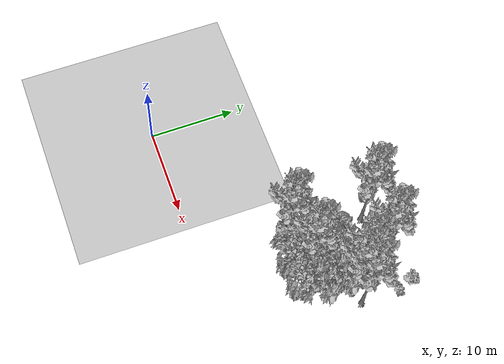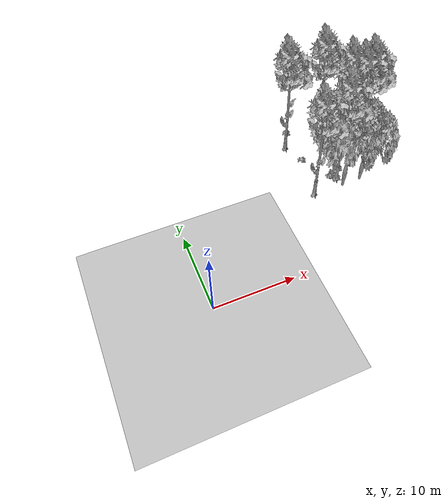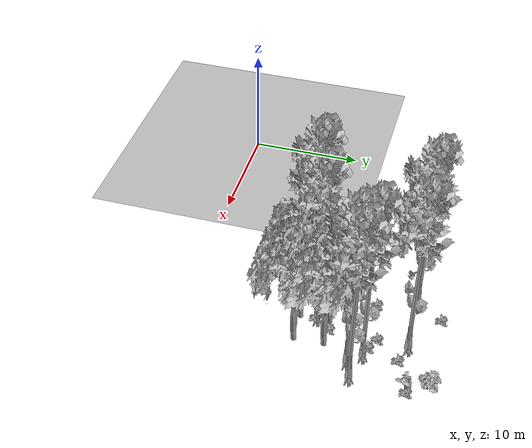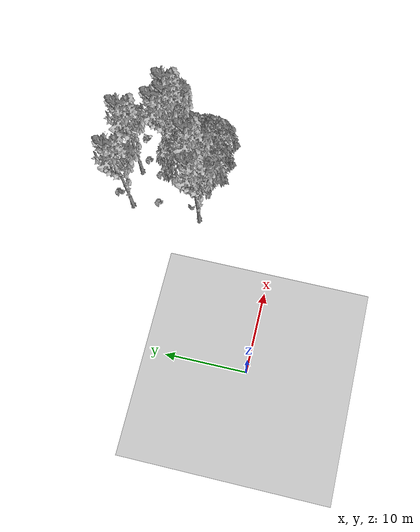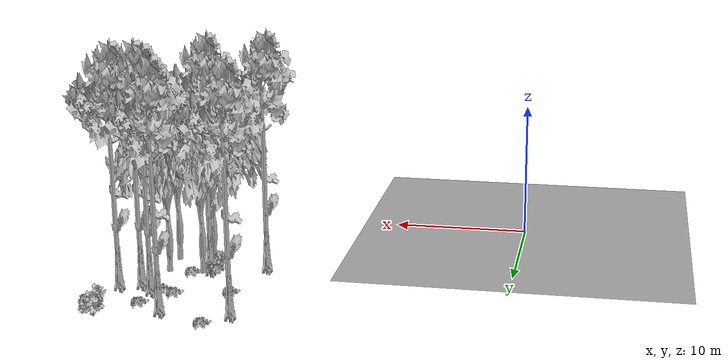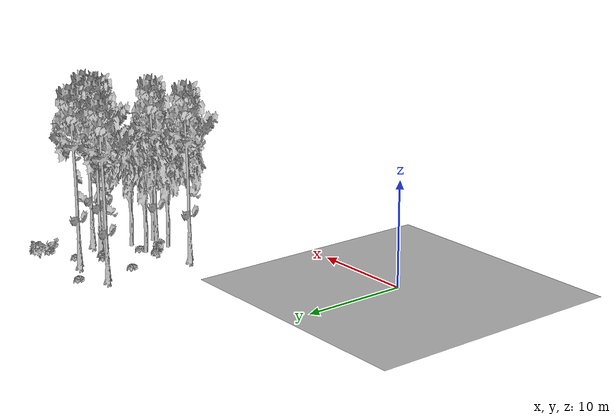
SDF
<sdf version="1.7">
 <world name="default">
  <model name="ground_plane">
   <static>1</static>
   <link name="link">
    <collision name="collision">
     <pose>-50 0 0 0 -0 0</pose>
     <geometry><plane><normal>0 0 1</normal><size>80 80</size></plane></geometry>
     <surface><contact><ode><min_depth>0.01</min_depth><max_vel>0</max_vel></ode></contact></surface>
    </collision>
    <visual name="grass">
     <cast_shadows>0</cast_shadows>
     <geometry>
      <mesh>
       <scale>0.46714285714285714 0.46714285714285714 0.1</scale>
       <uri>file://grass_plane/meshes/grass_plane.dae</uri>
      </mesh>
     </geometry>
    </visual>
   </link>
  </model>
  <model name="Tree 29">
   <static>1</static>
   <pose>27.171444746158684 15.330684765212474 0 1.57079 -0 0</pose>
   <link name="link">
    <collision name="collision">
     <geometry><mesh><scale>3.5 5 3.5</scale><uri>model://tree_9/meshes/tree_9.obj</uri></mesh></geometry>
    </collision>
    <visual name="visual">
     <geometry><mesh><scale>3.5 5 3.5</scale><uri>model://tree_9/meshes/tree_9.obj</uri></mesh></geometry>
    </visual>
   </link>
  </model>
  <model name="Tree 36">
   <static>1</static>
   <pose>24.28689004952345 12.646158830248162 0 1.57079 -0 0</pose>
   <link name="link">
    <collision name="collision">
     <geometry><mesh><scale>3.5 5 3.5</scale><uri>model://tree_2/meshes/tree_2.obj</uri></mesh></geometry>
    </collision>
    <visual name="visual">
     <geometry><mesh><scale>3.5 5 3.5</scale><uri>model://tree_2/meshes/tree_2.obj</uri></mesh></geometry>
    </visual>
   </link>
  </model>
  <model name="Tree 46">
   <static>1</static>
   <pose>17.864913618820772 10.258403864699886 0 1.57079 -0 0</pose>
   <link name="link">
    <collision name="collision">
     <geometry><mesh><scale>3.5 5 3.5</scale><uri>model://tree_9/meshes/tree_9.obj</uri></mesh></geometry>
    </collision>
    <visual name="visual">
     <geometry><mesh><scale>3.5 5 3.5</scale><uri>model://tree_9/meshes/tree_9.obj</uri></mesh></geometry>
    </visual>
   </link>
  </model>
  <model name="Tree 162">
   <static>1</static>
   <pose>25.697493069845237 14.834790841737544 0 1.57079 -0 0</pose>
   <link name="link">
    <collision name="collision">
     <geometry><mesh><scale>3.5 5 3.5</scale><uri>model://tree_9/meshes/tree_9.obj</uri></mesh></geometry>
    </collision>
    <visual name="visual">
     <geometry><mesh><scale>3.5 5 3.5</scale><uri>model://tree_9/meshes/tree_9.obj</uri></mesh></geometry>
    </visual>
   </link>
  </model>
  <model name="Tree 182">
   <static>1</static>
   <pose>24.644981242973927 15.904093824051117 0 1.57079 -0 0</pose>
   <link name="link">
    <collision name="collision">
     <geometry><mesh><scale>3.5 5 3.5</scale><uri>model://tree_9/meshes/tree_9.obj</uri></mesh></geometry>
    </collision>
    <visual name="visual">
     <geometry><mesh><scale>3.5 5 3.5</scale><uri>model://tree_9/meshes/tree_9.obj</uri></mesh></geometry>
    </visual>
   </link>
  </model>
  <model name="Tree 237">
   <static>1</static>
   <pose>21.72934920933539 11.489764212916072 0 1.57079 -0 0</pose>
   <link name="link">
    <collision name="collision">
     <geometry><mesh><scale>3.5 5 3.5</scale><uri>model://tree_9/meshes/tree_9.obj</uri></mesh></geometry>
    </collision>
    <visual name="visual">
     <geometry><mesh><scale>3.5 5 3.5</scale><uri>model://tree_9/meshes/tree_9.obj</uri></mesh></geometry>
    </visual>
   </link>
  </model>
  <model name="Tree 302">
   <static>1</static>
   <pose>24.3843712499381 10.162685085538797 0 1.57079 -0 0</pose>
   <link name="link">
    <collision name="collision">
     <geometry><mesh><scale>3.5 5 3.5</scale><uri>model://tree_2/meshes/tree_2.obj</uri></mesh></geometry>
    </collision>
    <visual name="visual">
     <geometry><mesh><scale>3.5 5 3.5</scale><uri>model://tree_2/meshes/tree_2.obj</uri></mesh></geometry>
    </visual>
   </link>
  </model>
  <model name="Tree 420">
   <static>1</static>
   <pose>22.834709359470345 19.238083608738997 0 1.57079 -0 0</pose>
   <link name="link">
    <collision name="collision">
     <geometry><mesh><scale>3.5 5 3.5</scale><uri>model://tree_9/meshes/tree_9.obj</uri></mesh></geometry>
    </collision>
    <visual name="visual">
     <geometry><mesh><scale>3.5 5 3.5</scale><uri>model://tree_9/meshes/tree_9.obj</uri></mesh></geometry>
    </visual>
   </link>
  </model>
  <model name="Tree 437">
   <static>1</static>
   <pose>17.939337957647325 19.130532645692433 0 1.57079 -0 0</pose>
   <link name="link">
    <collision name="collision">
     <geometry><mesh><scale>3.5 5 3.5</scale><uri>model://tree_9/meshes/tree_9.obj</uri></mesh></geometry>
    </collision>
    <visual name="visual">
     <geometry><mesh><scale>3.5 5 3.5</scale><uri>model://tree_9/meshes/tree_9.obj</uri></mesh></geometry>
    </visual>
   </link>
  </model>
  <model name="Tree 526">
   <static>1</static>
   <pose>21.818419233469093 10.075484699295451 0 1.57079 -0 0</pose>
   <link name="link">
    <collision name="collision">
     <geometry><mesh><scale>3.5 5 3.5</scale><uri>model://tree_2/meshes/tree_2.obj</uri></mesh></geometry>
    </collision>
    <visual name="visual">
     <geometry><mesh><scale>3.5 5 3.5</scale><uri>model://tree_2/meshes/tree_2.obj</uri></mesh></geometry>
    </visual>
   </link>
  </model>
  <model name="Tree 555">
   <static>1</static>
   <pose>21.84223056887756 12.558378515826988 0 1.57079 -0 0</pose>
   <link name="link">
    <collision name="collision">
     <geometry><mesh><scale>3.5 5 3.5</scale><uri>model://tree_2/meshes/tree_2.obj</uri></mesh></geometry>
    </collision>
    <visual name="visual">
     <geometry><mesh><scale>3.5 5 3.5</scale><uri>model://tree_2/meshes/tree_2.obj</uri></mesh></geometry>
    </visual>
   </link>
  </model>
  <model name="Bush 61">
   <static>1</static>
   <pose>22.67023732574411 16.686506792746997 0 1.57079 -0 0</pose>
   <link name="link">
    <collision name="collision">
     <geometry><mesh><scale>2 2 2</scale><uri>model://bush_2/meshes/bush_2.obj</uri></mesh></geometry>
     <surface><contact><collide_without_contact>false</collide_without_contact></contact></surface>
    </collision>
    <visual name="visual">
     <geometry><mesh><scale>2 2 2</scale><uri>model://bush_2/meshes/bush_2.obj</uri></mesh></geometry>
    </visual>
   </link>
  </model>
  <model name="Bush 66">
   <static>1</static>
   <pose>22.677660062489643 12.692200495342817 0 1.57079 -0 0</pose>
   <link name="link">
    <collision name="collision">
     <geometry><mesh><scale>2 2 2</scale><uri>model://bush_2/meshes/bush_2.obj</uri></mesh></geometry>
     <surface><contact><collide_without_contact>false</collide_without_contact></contact></surface>
    </collision>
    <visual name="visual">
     <geometry><mesh><scale>2 2 2</scale><uri>model://bush_2/meshes/bush_2.obj</uri></mesh></geometry>
    </visual>
   </link>
  </model>
  <model name="Bush 122">
   <static>1</static>
   <pose>19.158205701040465 21.361691416100605 0 1.57079 -0 0</pose>
   <link name="link">
    <collision name="collision">
     <geometry><mesh><scale>2 2 2</scale><uri>model://bush_2/meshes/bush_2.obj</uri></mesh></geometry>
     <surface><contact><collide_without_contact>false</collide_without_contact></contact></surface>
    </collision>
    <visual name="visual">
     <geometry><mesh><scale>2 2 2</scale><uri>model://bush_2/meshes/bush_2.obj</uri></mesh></geometry>
    </visual>
   </link>
  </model>
  <model name="Bush 132">
   <static>1</static>
   <pose>23.743716093269654 16.154837645892243 0 1.57079 -0 0</pose>
   <link name="link">
    <collision name="collision">
     <geometry><mesh><scale>2 2 2</scale><uri>model://bush_2/meshes/bush_2.obj</uri></mesh></geometry>
     <surface><contact><collide_without_contact>false</collide_without_contact></contact></surface>
    </collision>
    <visual name="visual">
     <geometry><mesh><scale>2 2 2</scale><uri>model://bush_2/meshes/bush_2.obj</uri></mesh></geometry>
    </visual>
   </link>
  </model>
  <model name="Bush 134">
   <static>1</static>
   <pose>27.117163595064056 19.742857094824366 0 1.57079 -0 0</pose>
   <link name="link">
    <collision name="collision">
     <geometry><mesh><scale>2 2 2</scale><uri>model://bush_0/meshes/bush_0.obj</uri></mesh></geometry>
     <surface><contact><collide_without_contact>false</collide_without_contact></contact></surface>
    </collision>
    <visual name="visual">
     <geometry><mesh><scale>2 2 2</scale><uri>model://bush_0/meshes/bush_0.obj</uri></mesh></geometry>
    </visual>
   </link>
  </model>
  <model name="Bush 215">
   <static>1</static>
   <pose>18.870967470979316 15.929353432607307 0 1.57079 -0 0</pose>
   <link name="link">
    <collision name="collision">
     <geometry><mesh><scale>2 2 2</scale><uri>model://bush_2/meshes/bush_2.obj</uri></mesh></geometry>
     <surface><contact><collide_without_contact>false</collide_without_contact></contact></surface>
    </collision>
    <visual name="visual">
     <geometry><mesh><scale>2 2 2</scale><uri>model://bush_2/meshes/bush_2.obj</uri></mesh></geometry>
    </visual>
   </link>
  </model>
  <model name="Bush 304">
   <static>1</static>
   <pose>21.108213219758362 11.885811404178895 0 1.57079 -0 0</pose>
   <link name="link">
    <collision name="collision">
     <geometry><mesh><scale>2 2 2</scale><uri>model://bush_2/meshes/bush_2.obj</uri></mesh></geometry>
     <surface><contact><collide_without_contact>false</collide_without_contact></contact></surface>
    </collision>
    <visual name="visual">
     <geometry><mesh><scale>2 2 2</scale><uri>model://bush_2/meshes/bush_2.obj</uri></mesh></geometry>
    </visual>
   </link>
  </model>
  <model name="Bush 323">
   <static>1</static>
   <pose>27.39821336006389 19.846740313922318 0 1.57079 -0 0</pose>
   <link name="link">
    <collision name="collision">
     <geometry><mesh><scale>2 2 2</scale><uri>model://bush_2/meshes/bush_2.obj</uri></mesh></geometry>
     <surface><contact><collide_without_contact>false</collide_without_contact></contact></surface>
    </collision>
    <visual name="visual">
     <geometry><mesh><scale>2 2 2</scale><uri>model://bush_2/meshes/bush_2.obj</uri></mesh></geometry>
    </visual>
   </link>
  </model>
  <model name="Bush 339">
   <static>1</static>
   <pose>24.415370072353753 18.705969039737376 0 1.57079 -0 0</pose>
   <link name="link">
    <collision name="collision">
     <geometry><mesh><scale>2 2 2</scale><uri>model://bush_2/meshes/bush_2.obj</uri></mesh></geometry>
     <surface><contact><collide_without_contact>false</collide_without_contact></contact></surface>
    </collision>
    <visual name="visual">
     <geometry><mesh><scale>2 2 2</scale><uri>model://bush_2/meshes/bush_2.obj</uri></mesh></geometry>
    </visual>
   </link>
  </model>
  <model name="Bush 377">
   <static>1</static>
   <pose>26.563284967152654 21.38208903791913 0 1.57079 -0 0</pose>
   <link name="link">
    <collision name="collision">
     <geometry><mesh><scale>2 2 2</scale><uri>model://bush_1/meshes/bush_1.obj</uri></mesh></geometry>
     <surface><contact><collide_without_contact>false</collide_without_contact></contact></surface>
    </collision>
    <visual name="visual">
     <geometry><mesh><scale>2 2 2</scale><uri>model://bush_1/meshes/bush_1.obj</uri></mesh></geometry>
    </visual>
   </link>
  </model>
  <model name="Bush 402">
   <static>1</static>
   <pose>21.688796114207513 11.345952839841488 0 1.57079 -0 0</pose>
   <link name="link">
    <collision name="collision">
     <geometry><mesh><scale>2 2 2</scale><uri>model://bush_2/meshes/bush_2.obj</uri></mesh></geometry>
     <surface><contact><collide_without_contact>false</collide_without_contact></contact></surface>
    </collision>
    <visual name="visual">
     <geometry><mesh><scale>2 2 2</scale><uri>model://bush_2/meshes/bush_2.obj</uri></mesh></geometry>
    </visual>
   </link>
  </model>
  <model name="Bush 525">
   <static>1</static>
   <pose>20.93248452967852 11.64290540137506 0 1.57079 -0 0</pose>
   <link name="link">
    <collision name="collision">
     <geometry><mesh><scale>2 2 2</scale><uri>model://bush_4/meshes/bush_4.obj</uri></mesh></geometry>
     <surface><contact><collide_without_contact>false</collide_without_contact></contact></surface>
    </collision>
    <visual name="visual">
     <geometry><mesh><scale>2 2 2</scale><uri>model://bush_4/meshes/bush_4.obj</uri></mesh></geometry>
    </visual>
   </link>
  </model>
 </world>
</sdf>
